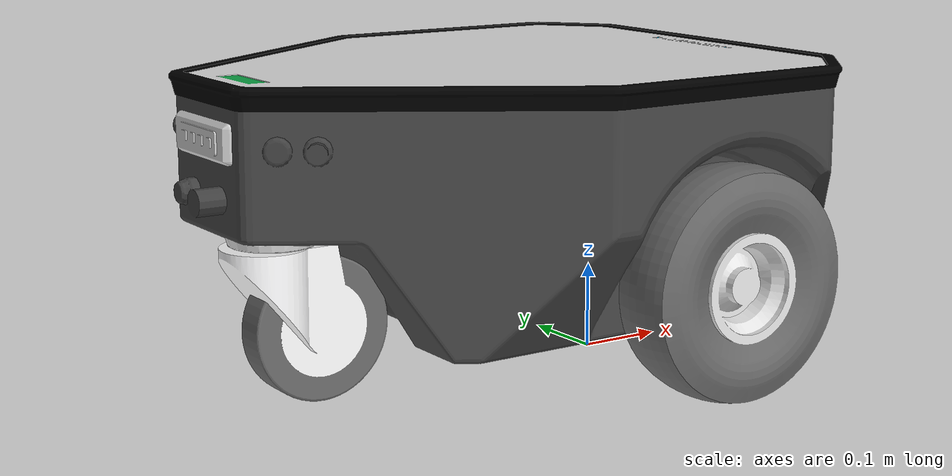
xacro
<?xml version="1.0"?>
<robot xmlns:xacro="http://www.ros.org/wiki/xacro" name="mp_500">

  <xacro:include filename="$(find neo_simulation)/robots/mp_500/xacros/mp_500_gazebo.xacro" />

  <!--++++++++++++++++++++++++++++++base_link++++++++++++++++++++++++++++++++++++++++++++++++++++-->
  <!--++++++++++++++++++++body++++++++++++++++++++++++++++-->

  <xacro:include filename="$(find neo_simulation)/robots/mp_500/xacros/mp_500_body.xacro" />

  <!--+++++++++++++++++++castor_wheel_link++++++++++++++++++++++++-->
  <xacro:include filename="$(find neo_simulation)/robots/mp_500/xacros/mp_500_caster_wheel.xacro" />

  <!--+++++++++++++++++++left_wheel_link++++++++++++++++++++++++-->
  <xacro:include filename="$(find neo_simulation)/robots/mp_500/xacros/mp_500_fixed_wheel_left.xacro" />
  <xacro:include filename="$(find neo_simulation)/robots/mp_500/xacros/mp_500_fixed_wheel_right.xacro" />

  <!-- SENSORS -->
  <!-- Sick S300 - Comment/Uncomment if required  -->

  <xacro:include filename="$(find neo_simulation)/robots/mp_500/xacros/sick_S300.xacro" />

  <!-- Microscan - Comment/Uncomment if required -->

  <!-- USS, IMU and Camera- Comment/Uncomment if required  -->

<link name="base_link" />

  <!-- Base link macro -->
 <xacro:mp_500_base name="base_footprint" parent="base_link">
    <origin xyz="0 0 0" rpy="0 0 0" />
  </xacro:mp_500_base>

  <!-- Wheel Macro -->
  <xacro:caster_wheel name="caster_wheel" parent="base_footprint">
    <origin xyz="-0.43 0. 0.176" rpy="-1.570796 0 1.570796 " />
  </xacro:caster_wheel>

  <xacro:fixed_wheel_right name="wheel_right" parent="base_footprint" number="1">
    <origin xyz="0. -0.25 0.13" rpy="0 0 -1.570796" />
  </xacro:fixed_wheel_right>

  <xacro:fixed_wheel_left name="wheel_left" parent="base_footprint" number="2">
    <origin xyz="0. 0.25 0.13" rpy="0 0 -1.570796" />
  </xacro:fixed_wheel_left>

 <!--+++++++++++++++++++laserscanner_front_link++++++++++++++++++++++++-->
   <!-- SENSORS -->
  <xacro:sick_laser_v0 name="lidar_1" parent="base_link" ros_topic="lidar_1/scan_filtered">
    <origin xyz="0.244 0 0.141" rpy="0 0 0" />
  </xacro:sick_laser_v0>

     <!--+++++++++++++++++++ IMU ++++++++++++++++++++++++-->
  <!-- Comment or uncomment based on your requirement -->

  <!--+++++++++++++++++++ Ultra Sonic ++++++++++++++++++++++++-->
  <!-- Comment or uncomment based on your requirement -->
  <!-- SENSOR 1 -->
  <!-- SENSOR 2 -->
  <!-- SENSOR 3 -->
  <!-- SENSOR 4 -->
  <!-- SENSOR 5 -->
  <!-- SENSOR 6 -->
  <!-- SENSOR 7 -->
  <!-- SENSOR 8 -->
  <!-- SENSOR 9 -->
  <!-- SENSOR 10 -->
  <!-- SENSOR 11 -->
  <!-- SENSOR 12 -->
  <!-- SENSOR 13 -->
  <!-- SENSOR 14 -->
  <!-- SENSOR 15 -->
  <!-- SENSOR 16 -->

  <!--Camera  -->

</robot>

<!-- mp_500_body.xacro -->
<robot xmlns:xacro="http://www.ros.org/wiki/xacro" name="mp_500">

<xacro:macro name="mp_500_base" params="name parent *origin">
    <joint name="${name}_joint" type="fixed">
      <xacro:insert_block name="origin" />
      <axis xyz="0 0 -1" />
      <joint_properties damping="1" friction="1" />
      <parent link="${parent}" />
      <child link="${name}" />
   </joint>
    <link name="${name}">
  <inertial>
        <mass value="5" />
        <origin xyz="0 0 0" rpy="0 0 0"/>
        <inertia ixx="1.71402" ixy="0.0" ixz="0.0"
                 iyy="0.8856" iyz="0.0"
                 izz="2.5725" />
</inertial>
  <visual name='body'>
  <origin xyz="0.0 0.0 0" rpy="0 0 1.570796" />
  <geometry>
      <mesh filename="package://neo_simulation/robots/mp_500/meshes/MP-500-BODY.dae" scale="0.001 0.001 0.001"/>
  </geometry>
  </visual>
  <collision name='body_collision'>
  <origin xyz="0.0 0.0 0.0" rpy=" 0 0. 1.570796" />
  <geometry>
    <mesh filename="package://neo_simulation/robots/mp_500/meshes/MP-500-BODY.dae" scale="0.001 0.001 0.001"/>
  </geometry>
  </collision>
  </link>

  </xacro:macro>

</robot>

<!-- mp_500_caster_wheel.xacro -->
<robot xmlns:xacro="http://www.ros.org/wiki/xacro" name="mp_500">

  <xacro:macro name="caster_wheel" params="name parent *origin">
   <joint name="${name}_joint" type="fixed">
    <xacro:insert_block name="origin" />
        <axis xyz="0 -1 0" />
      <limit effort="1000.0" lower="-1e+16" upper="1e+16" velocity="3.5"/>
      <parent link="${parent}" />
      <child link="${name}_link" />
      <joint_properties damping="1.0" friction="1.0" />
   </joint>

   <link name="${name}_link" type="wheel">
    <inertial>
        <mass value="1.82362"/>
        <inertia ixx="0.00499743171" ixy="0.00000004464" ixz="-0.00000002245"
                 iyy="0.00499741733" iyz="0.00000000164"
izz="0.00839239692"/>
</inertial>
      <visual name='castor_wheel'>
    <origin xyz="0 0 0" rpy="0 0 0" />
        <geometry>
            <mesh filename="package://neo_simulation/robots/mp_500/meshes/MP-500-WHEEL.dae" scale="0.001 0.001 0.001"/>
        </geometry>
      </visual>

    <collision>
      <origin xyz="0 0 0" rpy="0 0 0" />
      <geometry>
            <mesh filename="package://neo_simulation/robots/mp_500/meshes/MP-500-WHEEL.dae" scale="0.001 0.001 0.001"/>
      </geometry>
    </collision>
</link>

<gazebo reference="${name}_link">
      <kp>8000.0</kp>
      <kd>1460.0</kd>
      <mu1>0.5</mu1>
      <mu2>0.2</mu2>
      <fdir1>1 0 0</fdir1>
      <maxVel>3.0</maxVel>
      <minDepth>0.00</minDepth>
</gazebo>
  </xacro:macro>

</robot>

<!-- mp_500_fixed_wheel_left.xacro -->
<robot xmlns:xacro="http://www.ros.org/wiki/xacro" name="mp_500">

  <xacro:macro name="fixed_wheel_left" params="name parent number *origin">
    <joint name="${name}_joint" type="revolute">
    <xacro:insert_block name="origin" />
    <limit effort="1000.0" lower="-1e+16" upper="1e+16" velocity="3.5"/>
    <axis xyz="-1 0 0" />
    <joint_properties damping="0" friction="0.0" />
    <parent link="base_link" />
    <child link="${name}_link" />
   </joint>

    <link name="${name}_link" type="wheel">
    <inertial>
      <origin xyz="0 0 0" rpy="0 0 0"/>
        <mass value="1.82362"/>
        <inertia ixx="0.00399743171" ixy="0.00000004464" ixz="-0.00000002245"
                 iyy="0.00399741733" iyz="-0.00000000164"
                 izz="0.00739239692"/>
</inertial>
    <visual>
    <origin xyz="0 0 0" rpy="0 0 3.14" />
        <geometry>
            <mesh filename="package://neo_simulation/robots/mp_500/meshes/MP-500-WHEEL-LEFT.dae" scale="0.001 0.001 0.001"/>
        </geometry>
      </visual>

    <collision>
     <origin xyz="0 0 0" rpy="0 0 0" />
      <geometry>
            <mesh filename="package://neo_simulation/robots/mp_500/meshes/MP-500-WHEEL-LEFT.dae" scale="0.001 0.001 0.001"/>
      </geometry>
    </collision>
</link>

  </xacro:macro>

</robot>

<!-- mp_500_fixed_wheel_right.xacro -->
<robot xmlns:xacro="http://www.ros.org/wiki/xacro" name="mp_500">

  <xacro:macro name="fixed_wheel_right" params="name parent number *origin">
    <joint name="${name}_joint" type="revolute">
    <xacro:insert_block name="origin" />
    <limit effort="1000.0" lower="-1e+16" upper="1e+16" velocity="3.5"/>
    <axis xyz="-1 0 0" />
    <joint_properties damping="0" friction="0.0" />
    <parent link="base_link" />
    <child link="${name}_link" />
   </joint>

   <link name="${name}_link" type="wheel">
    <inertial>
      <origin xyz="0 0 0" rpy="0 0 0"/>
        <mass value="1.82362"/>
        <inertia ixx="0.00399743171" ixy="0.00000004464" ixz="-0.00000002245"
                 iyy="0.00399741733" iyz="-0.00000000164"
                 izz="0.00739239692"/>
</inertial>
    <visual>
    <origin xyz="0 0 0" rpy="0 0 0" />
        <geometry>
            <mesh filename="package://neo_simulation/robots/mp_500/meshes/MP-500-WHEEL-RIGHT.dae" scale="0.001 0.001 0.001"/>
        </geometry>
      </visual>

    <collision>
     <origin xyz="0 0 0" rpy="0 0 0" />
      <geometry>
            <mesh filename="package://neo_simulation/robots/mp_500/meshes/MP-500-WHEEL-RIGHT.dae" scale="0.001 0.001 0.001"/>
      </geometry>
    </collision>
</link>

  </xacro:macro>

</robot>

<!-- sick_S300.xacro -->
<robot xmlns:xacro="http://www.ros.org/wiki/xacro" name="mp_500">
  <xacro:macro name="sick_laser_v0" params="name parent *origin ros_topic">
    <joint name="${name}_joint" type="fixed">
      <axis xyz="0 1 0" />
      <xacro:insert_block name="origin" />
      <parent link="${parent}"/>
      <child link="${name}_link"/>
    </joint>
    <link name="${name}_link" type="laser">
      <inertial>
        <mass value="0.001" />
        <origin xyz="0 0 0" rpy="0 0 0" />
        <inertia ixx="0.0001" ixy="0" ixz="0" iyy="0.000001" iyz="0" izz="0.0001" />
      </inertial>
      <visual>
        <origin xyz="0 0 0.12" rpy="-1.57 -3.14 0" />
        <geometry>
        <mesh filename="package://neo_simulation/robots/mp_500/meshes/SICK-S300.dae" scale="0.001 0.001 0.001" />
        </geometry>
      </visual>
      <collision>
        <origin xyz="0 0 0.12" rpy="-1.57 0 3.14" />
        <geometry>
        <mesh filename="package://neo_simulation/robots/mp_500/meshes/SICK-S300.dae" scale="0.001 0.001 0.001" />
        </geometry>
      </collision>
    </link>
  </xacro:macro>
</robot>
